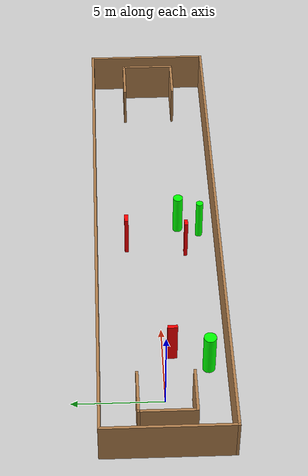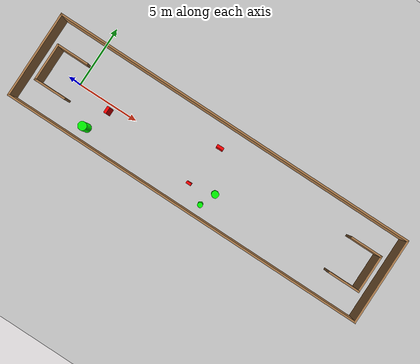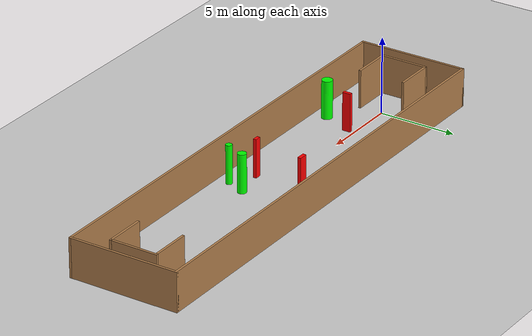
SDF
<sdf version="1.7">
 <world name="default">
  <light name="sun" type="directional">
   <pose>0 0 10 0 -0 0</pose>
   <diffuse>0.8 0.8 0.8 1</diffuse>
   <specular>0.2 0.2 0.2 1</specular>
   <attenuation>
    <range>1000</range>
    <constant>0.9</constant>
    <linear>0.01</linear>
    <quadratic>0.001</quadratic>
   </attenuation>
   <direction>-0.5 0.1 -0.9</direction>
   <spot><inner_angle>0</inner_angle><outer_angle>0</outer_angle><falloff>0</falloff></spot>
  </light>
  <model name="ground_plane">
   <static>1</static>
   <link name="link">
    <collision name="collision">
     <geometry><plane><normal>0 0 1</normal><size>100 100</size></plane></geometry>
     <surface>
      <contact><collide_bitmask>65535</collide_bitmask></contact>
      <friction><ode><mu>100</mu><mu2>50</mu2></ode></friction>
     </surface>
    </collision>
    <visual name="visual">
     <cast_shadows>0</cast_shadows>
     <geometry><plane><normal>0 0 1</normal><size>100 100</size></plane></geometry>
     <material>
      <script><uri>file://media/materials/scripts/gazebo.material</uri><name>Gazebo/Grey</name></script>
     </material>
    </visual>
   </link>
  </model>
  <gravity>0 0 -9.8</gravity>
  <magnetic_field>6e-06 2.3e-05 -4.2e-05</magnetic_field>
  <atmosphere type="adiabatic"/>
  <physics type="ode">
   <max_step_size>0.001</max_step_size>
   <real_time_factor>1</real_time_factor>
   <real_time_update_rate>1000</real_time_update_rate>
  </physics>
  <scene><ambient>0.4 0.4 0.4 1</ambient><background>0.7 0.7 0.7 1</background><shadows>1</shadows></scene>
  <spherical_coordinates>
   <surface_model>EARTH_WGS84</surface_model>
   <latitude_deg>0</latitude_deg>
   <longitude_deg>0</longitude_deg>
   <elevation>0</elevation>
   <heading_deg>0</heading_deg>
  </spherical_coordinates>
  <model name="my_base_walls">
   <link name="Wall_0">
    <collision name="Wall_0_Collision">
     <geometry><box><size>7.15 0.15 2.5</size></box></geometry>
     <pose>0 0 1.25 0 -0 0</pose>
    </collision>
    <visual name="Wall_0_Visual">
     <pose>0 0 1.25 0 -0 0</pose>
     <geometry><box><size>7.15 0.15 2.5</size></box></geometry>
     <material>
      <script><uri>file://media/materials/scripts/gazebo.material</uri><name>Gazebo/Wood</name></script>
      <ambient>1 1 1 1</ambient>
     </material>
     <meta><layer>0</layer></meta>
    </visual>
    <pose>-15 0 0 0 -0 1.5708</pose>
   </link>
   <link name="Wall_10">
    <collision name="Wall_10_Collision">
     <geometry><box><size>2.65 0.15 2.5</size></box></geometry>
     <pose>0 0 1.25 0 -0 0</pose>
    </collision>
    <visual name="Wall_10_Visual">
     <pose>0 0 1.25 0 -0 0</pose>
     <geometry><box><size>2.65 0.15 2.5</size></box></geometry>
     <material>
      <script><uri>file://media/materials/scripts/gazebo.material</uri><name>Gazebo/Wood</name></script>
      <ambient>1 1 1 1</ambient>
     </material>
     <meta><layer>0</layer></meta>
    </visual>
    <pose>-12.75 -1.5 0 0 -0 0</pose>
   </link>
   <link name="Wall_12">
    <collision name="Wall_12_Collision">
     <geometry><box><size>2.65 0.15 2.5</size></box></geometry>
     <pose>0 0 1.25 0 -0 0</pose>
    </collision>
    <visual name="Wall_12_Visual">
     <pose>0 0 1.25 0 -0 0</pose>
     <geometry><box><size>2.65 0.15 2.5</size></box></geometry>
     <material>
      <script><uri>file://media/materials/scripts/gazebo.material</uri><name>Gazebo/Wood</name></script>
      <ambient>1 1 1 1</ambient>
     </material>
     <meta><layer>0</layer></meta>
    </visual>
    <pose>-12.75 1.5 0 0 -0 0</pose>
   </link>
   <link name="Wall_14">
    <collision name="Wall_14_Collision">
     <geometry><box><size>3.15 0.15 2.5</size></box></geometry>
     <pose>0 0 1.25 0 -0 0</pose>
    </collision>
    <visual name="Wall_14_Visual">
     <pose>0 0 1.25 0 -0 0</pose>
     <geometry><box><size>3.15 0.15 2.5</size></box></geometry>
     <material>
      <script><uri>file://media/materials/scripts/gazebo.material</uri><name>Gazebo/Wood</name></script>
      <ambient>1 1 1 1</ambient>
     </material>
     <meta><layer>0</layer></meta>
    </visual>
    <pose>14 0 0 0 -0 -1.5708</pose>
   </link>
   <link name="Wall_15">
    <collision name="Wall_15_Collision">
     <geometry><box><size>2.65 0.15 2.5</size></box></geometry>
     <pose>0 0 1.25 0 -0 0</pose>
    </collision>
    <visual name="Wall_15_Visual">
     <pose>0 0 1.25 0 -0 0</pose>
     <geometry><box><size>2.65 0.15 2.5</size></box></geometry>
     <material>
      <script><uri>file://media/materials/scripts/gazebo.material</uri><name>Gazebo/Wood</name></script>
      <ambient>1 1 1 1</ambient>
     </material>
     <meta><layer>0</layer></meta>
    </visual>
    <pose>12.75 -1.5 0 0 -0 3.14159</pose>
   </link>
   <link name="Wall_17">
    <collision name="Wall_17_Collision">
     <geometry><box><size>2.65 0.15 2.5</size></box></geometry>
     <pose>0 0 1.25 0 -0 0</pose>
    </collision>
    <visual name="Wall_17_Visual">
     <pose>0 0 1.25 0 -0 0</pose>
     <geometry><box><size>2.65 0.15 2.5</size></box></geometry>
     <material>
      <script><uri>file://media/materials/scripts/gazebo.material</uri><name>Gazebo/Wood</name></script>
      <ambient>1 1 1 1</ambient>
     </material>
     <meta><layer>0</layer></meta>
    </visual>
    <pose>12.75 1.5 0 0 -0 3.14159</pose>
   </link>
   <link name="Wall_2">
    <collision name="Wall_2_Collision">
     <geometry><box><size>30.15 0.15 2.5</size></box></geometry>
     <pose>0 0 1.25 0 -0 0</pose>
    </collision>
    <visual name="Wall_2_Visual">
     <pose>0 0 1.25 0 -0 0</pose>
     <geometry><box><size>30.15 0.15 2.5</size></box></geometry>
     <material>
      <script><uri>file://media/materials/scripts/gazebo.material</uri><name>Gazebo/Wood</name></script>
      <ambient>1 1 1 1</ambient>
     </material>
     <meta><layer>0</layer></meta>
    </visual>
    <pose>-0 -3.5 0 0 -0 0</pose>
   </link>
   <link name="Wall_4">
    <collision name="Wall_4_Collision">
     <geometry><box><size>30.15 0.15 2.5</size></box></geometry>
     <pose>0 0 1.25 0 -0 0</pose>
    </collision>
    <visual name="Wall_4_Visual">
     <pose>0 0 1.25 0 -0 0</pose>
     <geometry><box><size>30.15 0.15 2.5</size></box></geometry>
     <material>
      <script><uri>file://media/materials/scripts/gazebo.material</uri><name>Gazebo/Wood</name></script>
      <ambient>1 1 1 1</ambient>
     </material>
     <meta><layer>0</layer></meta>
    </visual>
    <pose>-0 3.5 0 0 -0 0</pose>
   </link>
   <link name="Wall_6">
    <collision name="Wall_6_Collision">
     <geometry><box><size>7.15 0.15 2.5</size></box></geometry>
     <pose>0 0 1.25 0 -0 0</pose>
    </collision>
    <visual name="Wall_6_Visual">
     <pose>0 0 1.25 0 -0 0</pose>
     <geometry><box><size>7.15 0.15 2.5</size></box></geometry>
     <material>
      <script><uri>file://media/materials/scripts/gazebo.material</uri><name>Gazebo/Wood</name></script>
      <ambient>1 1 1 1</ambient>
     </material>
     <meta><layer>0</layer></meta>
    </visual>
    <pose>15 0 0 0 -0 -1.5708</pose>
   </link>
   <link name="Wall_9">
    <collision name="Wall_9_Collision">
     <geometry><box><size>3.15 0.15 2.5</size></box></geometry>
     <pose>0 0 1.25 0 -0 0</pose>
    </collision>
    <visual name="Wall_9_Visual">
     <pose>0 0 1.25 0 -0 0</pose>
     <geometry><box><size>3.15 0.15 2.5</size></box></geometry>
     <material>
      <script><uri>file://media/materials/scripts/gazebo.material</uri><name>Gazebo/Wood</name></script>
      <ambient>1 1 1 1</ambient>
     </material>
     <meta><layer>0</layer></meta>
    </visual>
    <pose>-14 0 0 0 -0 -1.5708</pose>
   </link>
   <static>1</static>
   <pose>11.5 0 0 0 -0 0</pose>
  </model>
  <model name="cylinder1">
   <static>1</static>
   <link name="link">
    <inertial>
     <mass>1</mass>
     <inertia><ixx>0.5</ixx><ixy>0</ixy><ixz>0</ixz><iyy>0.5</iyy><iyz>0</iyz><izz>1</izz></inertia>
    </inertial>
    <collision name="collision">
     <geometry><cylinder><radius>0.3466331618038523</radius><length>2.5</length></cylinder></geometry>
    </collision>
    <visual name="visual">
     <geometry><cylinder><radius>0.3466331618038523</radius><length>2.5</length></cylinder></geometry>
     <material>
      <ambient>0 1 0 1</ambient>
      <diffuse>0 1 0 1</diffuse>
      <specular>0.1 0.1 0.1 1</specular>
      <emissive>0 0 0 0</emissive>
     </material>
    </visual>
   </link>
   <pose>2.212816878665226 -2.450319731304267 1.25 0 0 0</pose>
  </model>
  <model name="cylinder2">
   <static>1</static>
   <link name="link">
    <inertial>
     <mass>1</mass>
     <inertia><ixx>0.5</ixx><ixy>0</ixy><ixz>0</ixz><iyy>0.5</iyy><iyz>0</iyz><izz>1</izz></inertia>
    </inertial>
    <collision name="collision">
     <geometry><cylinder><radius>0.2036311879280168</radius><length>2.5</length></cylinder></geometry>
    </collision>
    <visual name="visual">
     <geometry><cylinder><radius>0.2036311879280168</radius><length>2.5</length></cylinder></geometry>
     <material>
      <ambient>0 1 0 1</ambient>
      <diffuse>0 1 0 1</diffuse>
      <specular>0.1 0.1 0.1 1</specular>
      <emissive>0 0 0 0</emissive>
     </material>
    </visual>
   </link>
   <pose>12.49846285292485 -2.558339300906045 1.25 0 0 0</pose>
  </model>
  <model name="cylinder3">
   <static>1</static>
   <link name="link">
    <inertial>
     <mass>1</mass>
     <inertia><ixx>0.5</ixx><ixy>0</ixy><ixz>0</ixz><iyy>0.5</iyy><iyz>0</iyz><izz>1</izz></inertia>
    </inertial>
    <collision name="collision">
     <geometry><cylinder><radius>0.2792165424473794</radius><length>2.5</length></cylinder></geometry>
    </collision>
    <visual name="visual">
     <geometry><cylinder><radius>0.2792165424473794</radius><length>2.5</length></cylinder></geometry>
     <material>
      <ambient>0 1 0 1</ambient>
      <diffuse>0 1 0 1</diffuse>
      <specular>0.1 0.1 0.1 1</specular>
      <emissive>0 0 0 0</emissive>
     </material>
    </visual>
   </link>
   <pose>12.995051802299434 -1.3254435744585136 1.25 0 0 0</pose>
  </model>
  <model name="box1">
   <static>1</static>
   <link name="link">
    <inertial>
     <mass>1</mass>
     <inertia><ixx>0.083</ixx><ixy>0</ixy><ixz>0</ixz><iyy>0.083</iyy><iyz>0</iyz><izz>0.083</izz></inertia>
    </inertial>
    <collision name="collision">
     <geometry><box><size>0.5603697840651478 0.22046749665750764 2.5</size></box></geometry>
    </collision>
    <visual name="visual">
     <geometry><box><size>0.5603697840651478 0.22046749665750764 2.5</size></box></geometry>
     <material>
      <ambient>1 0 0 1</ambient>
      <diffuse>1 0 0 1</diffuse>
      <specular>0.1 0.1 0.1 1</specular>
      <emissive>0 0 0 0</emissive>
     </material>
    </visual>
    <sensor name="my_contact" type="contact">
     <contact><collision>box_collision</collision><topic>__default_topic__</topic></contact>
    </sensor>
   </link>
   <pose>11.42678932210124 1.7301646654886254 1.25 0 0 0</pose>
  </model>
  <model name="box2">
   <static>1</static>
   <link name="link">
    <inertial>
     <mass>1</mass>
     <inertia><ixx>0.083</ixx><ixy>0</ixy><ixz>0</ixz><iyy>0.083</iyy><iyz>0</iyz><izz>0.083</izz></inertia>
    </inertial>
    <collision name="collision">
     <geometry><box><size>0.2070402292845556 0.5500315544726998 2.5</size></box></geometry>
    </collision>
    <visual name="visual">
     <geometry><box><size>0.2070402292845556 0.5500315544726998 2.5</size></box></geometry>
     <material>
      <ambient>1 0 0 1</ambient>
      <diffuse>1 0 0 1</diffuse>
      <specular>0.1 0.1 0.1 1</specular>
      <emissive>0 0 0 0</emissive>
     </material>
    </visual>
    <sensor name="my_contact" type="contact">
     <contact><collision>box_collision</collision><topic>__default_topic__</topic></contact>
    </sensor>
   </link>
   <pose>3.051630711496083 -0.5045061167823857 1.25 0 0 0</pose>
  </model>
  <model name="box3">
   <static>1</static>
   <link name="link">
    <inertial>
     <mass>1</mass>
     <inertia><ixx>0.083</ixx><ixy>0</ixy><ixz>0</ixz><iyy>0.083</iyy><iyz>0</iyz><izz>0.083</izz></inertia>
    </inertial>
    <collision name="collision">
     <geometry><box><size>0.4034739439249655 0.2009170991232728 2.5</size></box></geometry>
    </collision>
    <visual name="visual">
     <geometry><box><size>0.4034739439249655 0.2009170991232728 2.5</size></box></geometry>
     <material>
      <ambient>1 0 0 1</ambient>
      <diffuse>1 0 0 1</diffuse>
      <specular>0.1 0.1 0.1 1</specular>
      <emissive>0 0 0 0</emissive>
     </material>
    </visual>
    <sensor name="my_contact" type="contact">
     <contact><collision>box_collision</collision><topic>__default_topic__</topic></contact>
    </sensor>
   </link>
   <pose>10.944330251060437 -1.6855115861118029 1.25 0 0 0</pose>
  </model>
 </world>
</sdf>
